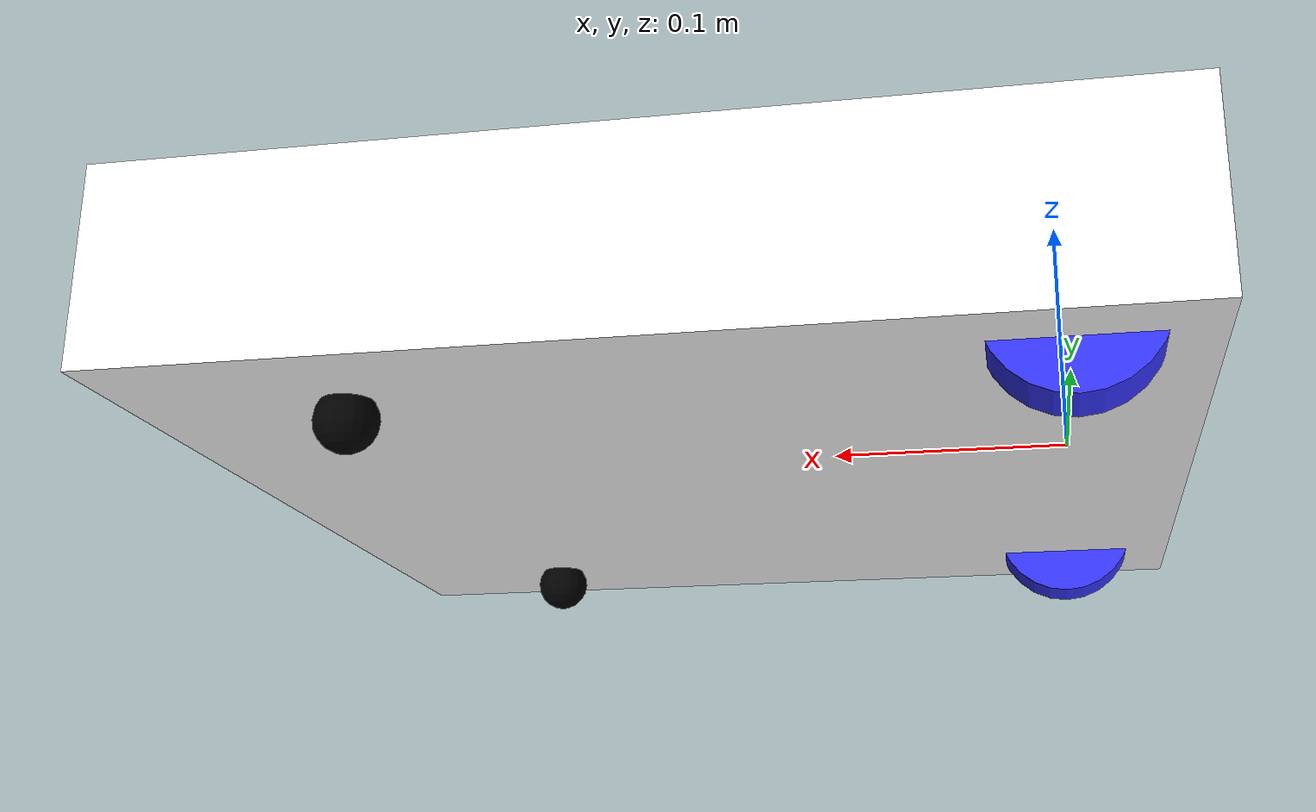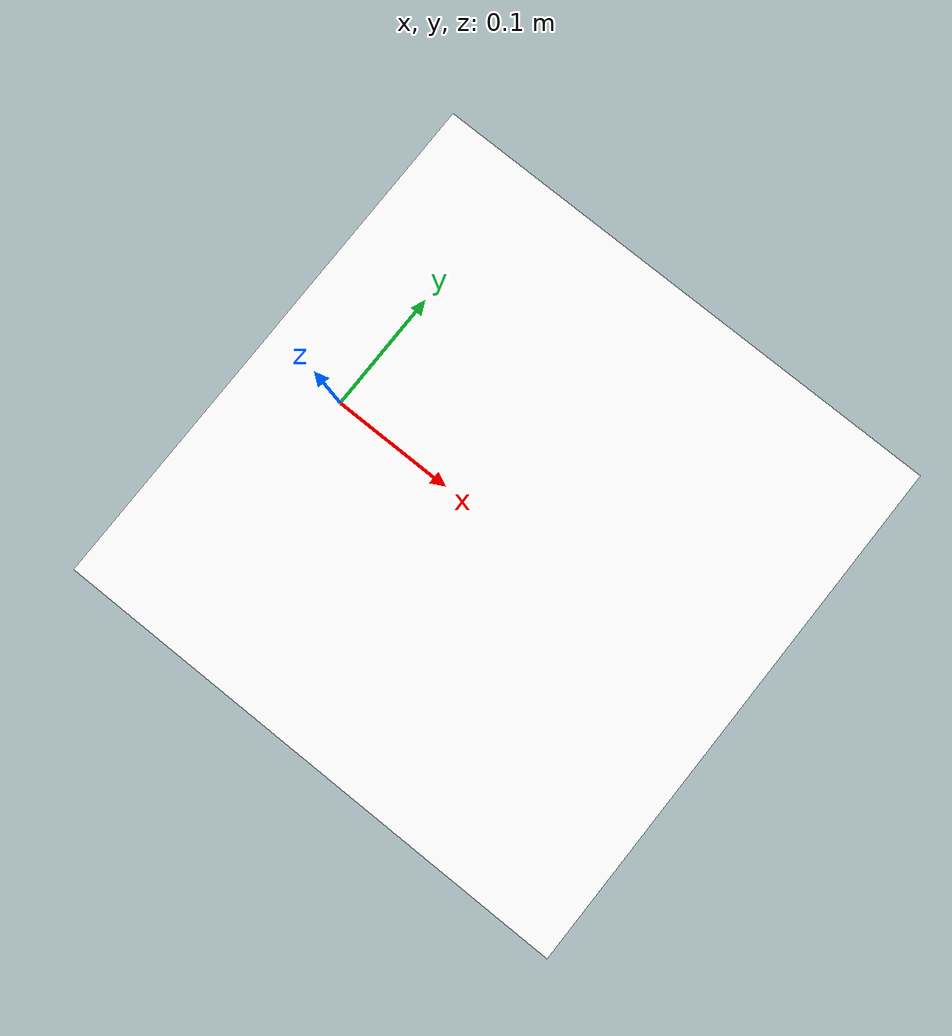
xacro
<?xml version="1.0"?>
<robot xmlns:xacro="http://www.ros.org/wiki/xacro" >

    <material name="white">
        <color rgba="1 1 1 1" />
    </material>

    <material name="orange">
        <color rgba="1 0.3 0.1 1"/>
    </material>

    <material name="blue">
        <color rgba="0.2 0.2 1 1"/>
    </material>

    <material name="black">
        <color rgba="0 0 0 1"/>
    </material>

    <material name="red">
        <color rgba="1 0 0 1"/>
    </material>

    <!-- BASE LINK -->

    <link name="base_link">

    </link>

    <!-- CHASSIS LINK -->

    <joint name="chassis_joint" type="fixed">
        <parent link="base_link"/>
        <child link="chassis"/>
        <origin xyz="-0.05 0 0"/>
    </joint>

    <link name="chassis">
        <visual>
            <origin xyz="0.2 0 0.027"/>
            <geometry>
                <box size="0.4 0.4 0.08"/>
            </geometry>
            <material name="white"/>
        </visual>
        <collision>
            <origin xyz="0.2 0 0.027"/>
            <geometry>
                <box size="0.4 0.4 0.08"/>
            </geometry>
        </collision>
    </link>

    <!-- LEFT WHEEL LINK -->

    <joint name="left_wheel_joint" type="continuous">
        <parent link="base_link"/>
        <child link="left_wheel"/>
        <origin xyz="0 0.16075 0" rpy="-${pi/2} 0 0" />
        <axis xyz="0 0 1"/>
    </joint>

    <link name="left_wheel">
        <visual>
            <geometry>
                <cylinder radius="0.033" length="0.0265"/>
            </geometry>
            <material name="blue"/>
        </visual>
        <collision>
            <geometry>
                <cylinder radius="0.033" length="0.0265"/>
            </geometry>
        </collision>
    </link>

    <!-- RIGHT WHEEL LINK -->

    <joint name="right_wheel_joint" type="continuous">
        <parent link="base_link"/>
        <child link="right_wheel"/>
        <origin xyz="0 -0.16075 0" rpy="${pi/2} 0 0" />
        <axis xyz="0 0 -1"/>
    </joint>

    <link name="right_wheel">
        <visual>
            <geometry>
                <cylinder radius="0.033" length="0.0265"/>
            </geometry>
            <material name="blue"/>
        </visual>
        <collision>
            <geometry>
                <cylinder radius="0.033" length="0.0265"/>
            </geometry>
        </collision>
    </link>

    <!-- CASTER WHEEL LINK -->

    <joint name="left_caster_wheel_joint" type="fixed">
        <parent link="chassis"/>
        <child link="left_caster_wheel"/>
        <origin xyz="0.314 0.150 -0.0205"/>
    </joint>

    <link name="left_caster_wheel">
        <visual>
            <geometry>
                <sphere radius="0.0125"/>
            </geometry>
            <material name="black"/>
        </visual>
        <collision>
            <geometry>
                <sphere radius="0.0125"/>
            </geometry>
        </collision>

    </link>

    <joint name="right_caster_wheel_joint" type="fixed">
        <parent link="chassis"/>
        <child link="right_caster_wheel"/>
        <origin xyz="0.314 -0.150 -0.0205"/>
    </joint>

    <link name="right_caster_wheel">
        <visual>
            <geometry>
                <sphere radius="0.0125"/>
            </geometry>
            <material name="black"/>
        </visual>
        <collision>
            <geometry>
                <sphere radius="0.0125"/>
            </geometry>
        </collision>

    </link>

</robot>
